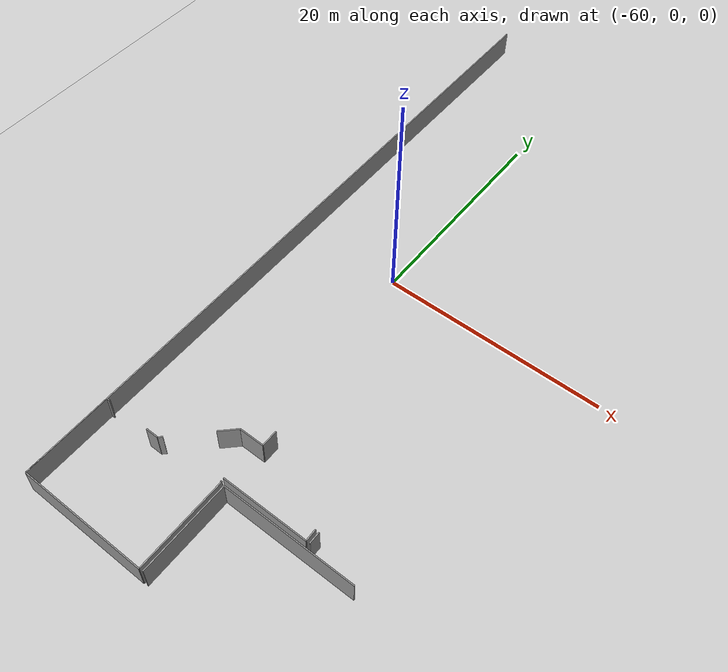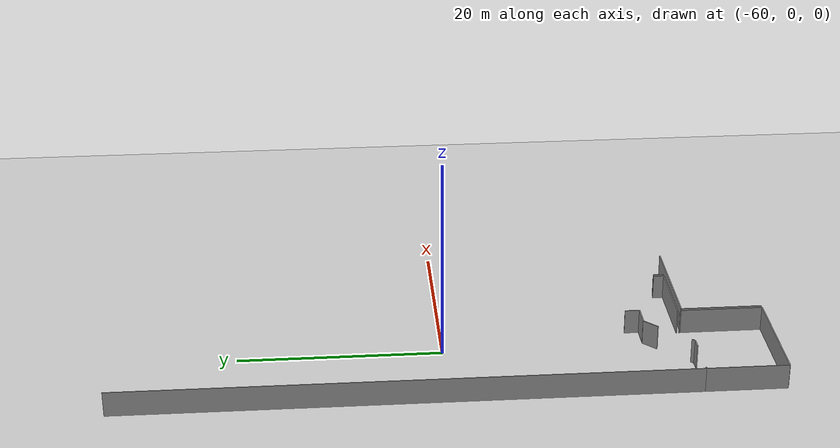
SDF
<sdf version="1.6">
 <world name="default">
  <model name="ground_plane">
   <static>1</static>
   <link name="link">
    <collision name="collision">
     <geometry><plane><normal>0 0 1</normal><size>100 100</size></plane></geometry>
     <surface><friction><ode><mu>100</mu><mu2>50</mu2></ode></friction></surface>
    </collision>
    <visual name="visual">
     <cast_shadows>0</cast_shadows>
     <geometry><plane><normal>0 0 1</normal><size>100 100</size></plane></geometry>
     <material>
      <script><uri>file://media/materials/scripts/gazebo.material</uri><name>Gazebo/Grey</name></script>
     </material>
    </visual>
   </link>
  </model>
  <model name="0510032216_A-40">
   <static>1</static>
   <link name="Wall_44">
    <collision name="Wall_44_Collision">
     <geometry><box><size>7.69898752658 0.1 2.5</size></box></geometry>
     <pose>3.84949376329 0 1.25 0 0 0</pose>
    </collision>
    <visual name="Wall_44_Visual">
     <pose>3.84949376329 0 1.25 0 0 0</pose>
     <geometry><box><size>7.69898752658 0.1 2.5</size></box></geometry>
     <material>
      <script><uri>file://media/materials/scripts/gazebo.material</uri><name>Gazebo/Grey</name></script>
      <ambient>1 1 1 1</ambient>
     </material>
    </visual>
    <pose>19.1662805091 -55.5731361285 0 0 0 3.14159265359</pose>
   </link>
   <link name="Wall_45">
    <collision name="Wall_45_Collision">
     <geometry><box><size>1.77089771747 0.1 2.5</size></box></geometry>
     <pose>0.885448858735 0 1.25 0 0 0</pose>
    </collision>
    <visual name="Wall_45_Visual">
     <pose>0.885448858735 0 1.25 0 0 0</pose>
     <geometry><box><size>1.77089771747 0.1 2.5</size></box></geometry>
     <material>
      <script><uri>file://media/materials/scripts/gazebo.material</uri><name>Gazebo/Grey</name></script>
      <ambient>1 1 1 1</ambient>
     </material>
    </visual>
    <pose>8.44777351065 -53.0762941569 0 0 0 0.77667892781</pose>
   </link>
   <link name="Wall_46">
    <collision name="Wall_46_Collision">
     <geometry><box><size>2.22122068112 0.1 2.5</size></box></geometry>
     <pose>1.11061034056 0 1.25 0 0 0</pose>
    </collision>
    <visual name="Wall_46_Visual">
     <pose>1.11061034056 0 1.25 0 0 0</pose>
     <geometry><box><size>2.22122068112 0.1 2.5</size></box></geometry>
     <material>
      <script><uri>file://media/materials/scripts/gazebo.material</uri><name>Gazebo/Grey</name></script>
      <ambient>1 1 1 1</ambient>
     </material>
    </visual>
    <pose>9.71085790459 -51.8350461802 0 0 0 0.0</pose>
   </link>
   <link name="Wall_47">
    <collision name="Wall_47_Collision">
     <geometry><box><size>1.46634081315 0.1 2.5</size></box></geometry>
     <pose>0.733170406576 0 1.25 0 0 0</pose>
    </collision>
    <visual name="Wall_47_Visual">
     <pose>0.733170406576 0 1.25 0 0 0</pose>
     <geometry><box><size>1.46634081315 0.1 2.5</size></box></geometry>
     <material>
      <script><uri>file://media/materials/scripts/gazebo.material</uri><name>Gazebo/Grey</name></script>
      <ambient>1 1 1 1</ambient>
     </material>
    </visual>
    <pose>11.9320785857 -51.8350461802 0 0 0 1.57079632679</pose>
   </link>
   <link name="Wall_56">
    <collision name="Wall_56_Collision">
     <geometry><box><size>1.0563462444 0.1 2.5</size></box></geometry>
     <pose>0.528173122201 0 1.25 0 0 0</pose>
    </collision>
    <visual name="Wall_56_Visual">
     <pose>0.528173122201 0 1.25 0 0 0</pose>
     <geometry><box><size>1.0563462444 0.1 2.5</size></box></geometry>
     <material>
      <script><uri>file://media/materials/scripts/gazebo.material</uri><name>Gazebo/Grey</name></script>
      <ambient>1 1 1 1</ambient>
     </material>
    </visual>
    <pose>19.1400006348 -54.5171168312 0 0 0 -1.54591567231</pose>
   </link>
   <link name="Wall_61">
    <collision name="Wall_61_Collision">
     <geometry><box><size>1.03151680579 0.1 2.5</size></box></geometry>
     <pose>0.515758402895 0 1.25 0 0 0</pose>
    </collision>
    <visual name="Wall_61_Visual">
     <pose>0.515758402895 0 1.25 0 0 0</pose>
     <geometry><box><size>1.03151680579 0.1 2.5</size></box></geometry>
     <material>
      <script><uri>file://media/materials/scripts/gazebo.material</uri><name>Gazebo/Grey</name></script>
      <ambient>1 1 1 1</ambient>
     </material>
    </visual>
    <pose>19.4698321008 -55.5605674929 0 0 0 1.57079632679</pose>
   </link>
   <link name="Wall_68">
    <collision name="Wall_68_Collision">
     <geometry><box><size>11.5805376583 0.1 2.5</size></box></geometry>
     <pose>5.79026882915 0 1.25 0 0 0</pose>
    </collision>
    <visual name="Wall_68_Visual">
     <pose>5.79026882915 0 1.25 0 0 0</pose>
     <geometry><box><size>11.5805376583 0.1 2.5</size></box></geometry>
     <material>
      <script><uri>file://media/materials/scripts/gazebo.material</uri><name>Gazebo/Grey</name></script>
      <ambient>1 1 1 1</ambient>
     </material>
    </visual>
    <pose>11.5805376583 -64.0961944965 0 0 0 3.14159265359</pose>
   </link>
   <link name="Wall_69">
    <collision name="Wall_69_Collision">
     <geometry><box><size>7.9485828546 0.1 2.5</size></box></geometry>
     <pose>3.9742914273 0 1.25 0 0 0</pose>
    </collision>
    <visual name="Wall_69_Visual">
     <pose>3.9742914273 0 1.25 0 0 0</pose>
     <geometry><box><size>7.9485828546 0.1 2.5</size></box></geometry>
     <material>
      <script><uri>file://media/materials/scripts/gazebo.material</uri><name>Gazebo/Grey</name></script>
      <ambient>1 1 1 1</ambient>
     </material>
    </visual>
    <pose>0.0 -64.0961944965 0 0 0 1.57079632679</pose>
   </link>
   <link name="Wall_70">
    <collision name="Wall_70_Collision">
     <geometry><box><size>0.298067096201 0.1 2.5</size></box></geometry>
     <pose>0.1490335481 0 1.25 0 0 0</pose>
    </collision>
    <visual name="Wall_70_Visual">
     <pose>0.1490335481 0 1.25 0 0 0</pose>
     <geometry><box><size>0.298067096201 0.1 2.5</size></box></geometry>
     <material>
      <script><uri>file://media/materials/scripts/gazebo.material</uri><name>Gazebo/Grey</name></script>
      <ambient>1 1 1 1</ambient>
     </material>
    </visual>
    <pose>0.0 -56.1476116419 0 0 0 0.0</pose>
   </link>
   <link name="Wall_71">
    <collision name="Wall_71_Collision">
     <geometry><box><size>1.14247627511 0.1 2.5</size></box></geometry>
     <pose>0.571238137557 0 1.25 0 0 0</pose>
    </collision>
    <visual name="Wall_71_Visual">
     <pose>0.571238137557 0 1.25 0 0 0</pose>
     <geometry><box><size>1.14247627511 0.1 2.5</size></box></geometry>
     <material>
      <script><uri>file://media/materials/scripts/gazebo.material</uri><name>Gazebo/Grey</name></script>
      <ambient>1 1 1 1</ambient>
     </material>
    </visual>
    <pose>4.23969276669 -56.1476116419 0 0 0 0.0</pose>
   </link>
   <link name="Wall_72">
    <collision name="Wall_72_Collision">
     <geometry><box><size>0.396110469469 0.1 2.5</size></box></geometry>
     <pose>0.198055234734 0 1.25 0 0 0</pose>
    </collision>
    <visual name="Wall_72_Visual">
     <pose>0.198055234734 0 1.25 0 0 0</pose>
     <geometry><box><size>0.396110469469 0.1 2.5</size></box></geometry>
     <material>
      <script><uri>file://media/materials/scripts/gazebo.material</uri><name>Gazebo/Grey</name></script>
      <ambient>1 1 1 1</ambient>
     </material>
    </visual>
    <pose>5.3821690418 -56.1476116419 0 0 0 0.771346504438</pose>
   </link>
   <link name="Wall_73">
    <collision name="Wall_73_Collision">
     <geometry><box><size>0.119973339258 0.1 2.5</size></box></geometry>
     <pose>0.059986669629 0 1.25 0 0 0</pose>
    </collision>
    <visual name="Wall_73_Visual">
     <pose>0.059986669629 0 1.25 0 0 0</pose>
     <geometry><box><size>0.119973339258 0.1 2.5</size></box></geometry>
     <material>
      <script><uri>file://media/materials/scripts/gazebo.material</uri><name>Gazebo/Grey</name></script>
      <ambient>1 1 1 1</ambient>
     </material>
    </visual>
    <pose>11.4478687276 -55.8714825277 0 0 0 0.0</pose>
   </link>
   <link name="Wall_74">
    <collision name="Wall_74_Collision">
     <geometry><box><size>8.22472176716 0.1 2.5</size></box></geometry>
     <pose>4.11236088358 0 1.25 0 0 0</pose>
    </collision>
    <visual name="Wall_74_Visual">
     <pose>4.11236088358 0 1.25 0 0 0</pose>
     <geometry><box><size>8.22472176716 0.1 2.5</size></box></geometry>
     <material>
      <script><uri>file://media/materials/scripts/gazebo.material</uri><name>Gazebo/Grey</name></script>
      <ambient>1 1 1 1</ambient>
     </material>
    </visual>
    <pose>11.5678420668 -55.8714825277 0 0 0 -1.56925273701</pose>
   </link>
   <link name="Wall_76">
    <collision name="Wall_76_Collision">
     <geometry><box><size>8.07084140032 0.1 2.5</size></box></geometry>
     <pose>4.03542070016 0 1.25 0 0 0</pose>
    </collision>
    <visual name="Wall_76_Visual">
     <pose>4.03542070016 0 1.25 0 0 0</pose>
     <geometry><box><size>8.07084140032 0.1 2.5</size></box></geometry>
     <material>
      <script><uri>file://media/materials/scripts/gazebo.material</uri><name>Gazebo/Grey</name></script>
      <ambient>1 1 1 1</ambient>
     </material>
    </visual>
    <pose>11.921287333 -64.0796902276 0 0 0 1.57079632679</pose>
   </link>
   <link name="Wall_77">
    <collision name="Wall_77_Collision">
     <geometry><box><size>11.8135017615 0.1 2.5</size></box></geometry>
     <pose>5.90675088076 0 1.25 0 0 0</pose>
    </collision>
    <visual name="Wall_77_Visual">
     <pose>5.90675088076 0 1.25 0 0 0</pose>
     <geometry><box><size>11.8135017615 0.1 2.5</size></box></geometry>
     <material>
      <script><uri>file://media/materials/scripts/gazebo.material</uri><name>Gazebo/Grey</name></script>
      <ambient>1 1 1 1</ambient>
     </material>
    </visual>
    <pose>11.921287333 -56.0088488272 0 0 0 0.0</pose>
   </link>
   <link name="Wall_247">
    <collision name="Wall_247_Collision">
     <geometry><box><size>64.0961944965 0.1 2.5</size></box></geometry>
     <pose>32.0480972482 0 1.25 0 0 0</pose>
    </collision>
    <visual name="Wall_247_Visual">
     <pose>32.0480972482 0 1.25 0 0 0</pose>
     <geometry><box><size>64.0961944965 0.1 2.5</size></box></geometry>
     <material>
      <script><uri>file://media/materials/scripts/gazebo.material</uri><name>Gazebo/Grey</name></script>
      <ambient>1 1 1 1</ambient>
     </material>
    </visual>
    <pose>0.0 -64.0961944965 0 0 0 1.57079632679</pose>
   </link>
   <pose>-69.25 32.0461944965 0 0 0 0</pose>
  </model>
 </world>
</sdf>
